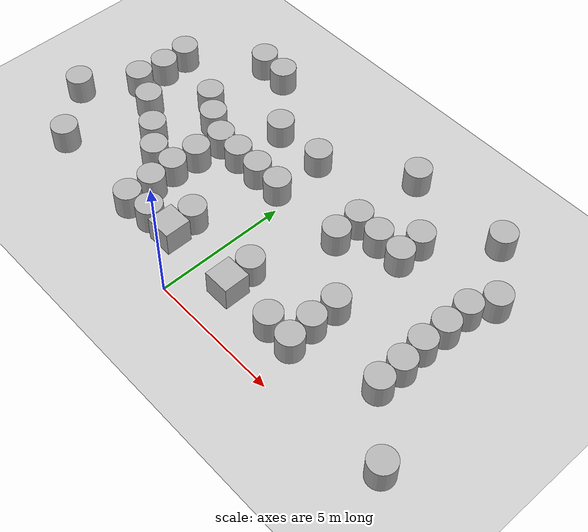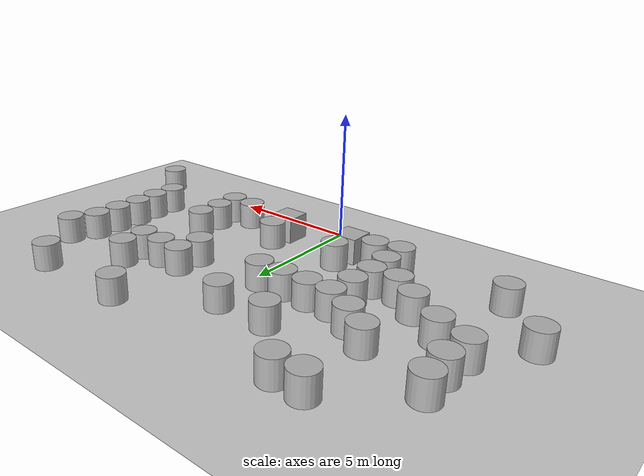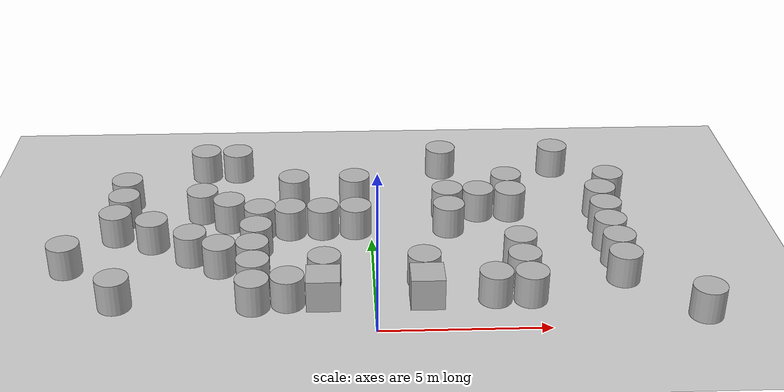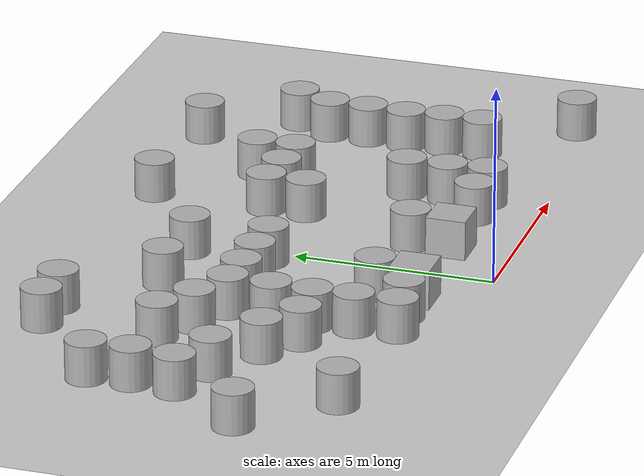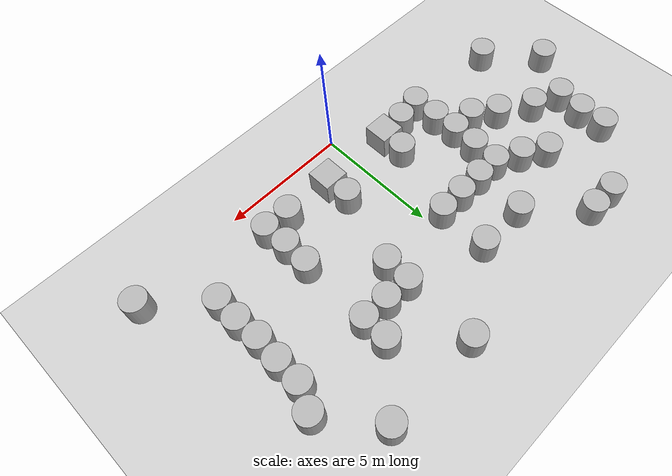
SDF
<sdf version="1.10">
 <world name="empty">
  <model name="ground_plane">
   <static>true</static>
   <link name="link">
    <collision name="collision">
     <geometry><plane><normal>0 0 1</normal><size>100 100</size></plane></geometry>
    </collision>
    <visual name="visual">
     <geometry><plane><normal>0 0 1</normal><size>100 100</size></plane></geometry>
     <material>
      <ambient>0.800000012 0.800000012 0.800000012 1</ambient>
      <diffuse>0.800000012 0.800000012 0.800000012 1</diffuse>
      <specular>0.800000012 0.800000012 0.800000012 1</specular>
     </material>
    </visual>
    <inertial>
     <mass>1</mass>
     <inertia><ixx>1</ixx><ixy>0</ixy><ixz>0</ixz><iyy>1</iyy><iyz>0</iyz><izz>1</izz></inertia>
    </inertial>
   </link>
  </model>
  <model name="box">
   <pose>-1.5142732858657837 1.5099300146102905 0.49999999990199806 8.6640958360379174e-21 4.2103315724608965e-23 5.9901372046615035e-22</pose>
   <link name="box_link">
    <inertial>
     <inertia><ixx>0.16666</ixx><ixy>0</ixy><ixz>0</ixz><iyy>0.16666</iyy><iyz>0</iyz><izz>0.16666</izz></inertia>
     <mass>1</mass>
    </inertial>
    <collision name="box_collision"><geometry><box><size>1 1 1</size></box></geometry></collision>
    <visual name="box_visual">
     <geometry><box><size>1 1 1</size></box></geometry>
     <material>
      <ambient>0.300000012 0.300000012 0.300000012 1</ambient>
      <diffuse>0.699999988 0.699999988 0.699999988 1</diffuse>
      <specular>1 1 1 1</specular>
     </material>
    </visual>
   </link>
   <static>false</static>
  </model>
  <model name="box_0">
   <pose>1.5080900192260742 1.5054577589035034 0.49999999990199806 9.9286448546489566e-22 -3.5225209775240119e-21 -3.9402750076948344e-22</pose>
   <link name="box_link">
    <inertial>
     <inertia><ixx>0.16666</ixx><ixy>0</ixy><ixz>0</ixz><iyy>0.16666</iyy><iyz>0</iyz><izz>0.16666</izz></inertia>
     <mass>1</mass>
    </inertial>
    <collision name="box_collision"><geometry><box><size>1 1 1</size></box></geometry></collision>
    <visual name="box_visual">
     <geometry><box><size>1 1 1</size></box></geometry>
     <material>
      <ambient>0.300000012 0.300000012 0.300000012 1</ambient>
      <diffuse>0.699999988 0.699999988 0.699999988 1</diffuse>
      <specular>1 1 1 1</specular>
     </material>
    </visual>
   </link>
   <static>false</static>
  </model>
  <model name="cylinder">
   <pose>-1.4837546737511549 2.5115409236591981 0.49999942638036005 1.2900801804576693e-19 1.8421700609310675e-19 -1.4533065116624549e-20</pose>
   <link name="cylinder_link">
    <inertial>
     <inertia>
      <ixx>0.14580000000000001</ixx>
      <ixy>0</ixy>
      <ixz>0</ixz>
      <iyy>0.14580000000000001</iyy>
      <iyz>0</iyz>
      <izz>0.125</izz>
     </inertia>
     <mass>1</mass>
    </inertial>
    <collision name="cylinder_collision">
     <geometry><cylinder><radius>0.5</radius><length>1</length></cylinder></geometry>
    </collision>
    <visual name="cylinder_visual">
     <geometry><cylinder><radius>0.5</radius><length>1</length></cylinder></geometry>
     <material>
      <ambient>0.300000012 0.300000012 0.300000012 1</ambient>
      <diffuse>0.699999988 0.699999988 0.699999988 1</diffuse>
      <specular>1 1 1 1</specular>
     </material>
    </visual>
   </link>
   <static>false</static>
  </model>
  <model name="cylinder_0">
   <pose>-1.5368457435468508 5.5079104028776644 0.49999942638036005 -9.4769493904214775e-20 4.7750270177761677e-20 9.4196160317118267e-21</pose>
   <link name="cylinder_link">
    <inertial>
     <inertia>
      <ixx>0.14580000000000001</ixx>
      <ixy>0</ixy>
      <ixz>0</ixz>
      <iyy>0.14580000000000001</iyy>
      <iyz>0</iyz>
      <izz>0.125</izz>
     </inertia>
     <mass>1</mass>
    </inertial>
    <collision name="cylinder_collision">
     <geometry><cylinder><radius>0.5</radius><length>1</length></cylinder></geometry>
    </collision>
    <visual name="cylinder_visual">
     <geometry><cylinder><radius>0.5</radius><length>1</length></cylinder></geometry>
     <material>
      <ambient>0.300000012 0.300000012 0.300000012 1</ambient>
      <diffuse>0.699999988 0.699999988 0.699999988 1</diffuse>
      <specular>1 1 1 1</specular>
     </material>
    </visual>
   </link>
   <static>false</static>
  </model>
  <model name="cylinder_1">
   <pose>-0.50015280302760123 5.5109114429446704 0.49999942638036005 -1.8290064490072975e-19 -1.6022983802186347e-19 2.1797375953600389e-20</pose>
   <link name="cylinder_link">
    <inertial>
     <inertia>
      <ixx>0.14580000000000001</ixx>
      <ixy>0</ixy>
      <ixz>0</ixz>
      <iyy>0.14580000000000001</iyy>
      <iyz>0</iyz>
      <izz>0.125</izz>
     </inertia>
     <mass>1</mass>
    </inertial>
    <collision name="cylinder_collision">
     <geometry><cylinder><radius>0.5</radius><length>1</length></cylinder></geometry>
    </collision>
    <visual name="cylinder_visual">
     <geometry><cylinder><radius>0.5</radius><length>1</length></cylinder></geometry>
     <material>
      <ambient>0.300000012 0.300000012 0.300000012 1</ambient>
      <diffuse>0.699999988 0.699999988 0.699999988 1</diffuse>
      <specular>1 1 1 1</specular>
     </material>
    </visual>
   </link>
   <static>false</static>
  </model>
  <model name="cylinder_2">
   <pose>2.4653722738842641 5.5155461895708893 0.49999942638036005 -1.2159427297744482e-19 3.5312910165291729e-19 9.3546767268988265e-21</pose>
   <link name="cylinder_link">
    <inertial>
     <inertia>
      <ixx>0.14580000000000001</ixx>
      <ixy>0</ixy>
      <ixz>0</ixz>
      <iyy>0.14580000000000001</iyy>
      <iyz>0</iyz>
      <izz>0.125</izz>
     </inertia>
     <mass>1</mass>
    </inertial>
    <collision name="cylinder_collision">
     <geometry><cylinder><radius>0.5</radius><length>1</length></cylinder></geometry>
    </collision>
    <visual name="cylinder_visual">
     <geometry><cylinder><radius>0.5</radius><length>1</length></cylinder></geometry>
     <material>
      <ambient>0.300000012 0.300000012 0.300000012 1</ambient>
      <diffuse>0.699999988 0.699999988 0.699999988 1</diffuse>
      <specular>1 1 1 1</specular>
     </material>
    </visual>
   </link>
   <static>false</static>
  </model>
  <model name="cylinder_3">
   <pose>1.487433394811243 2.5255222043697376 0.49999942638036005 1.8706433839552678e-19 5.2283511329588628e-19 -1.3109912346937293e-21</pose>
   <link name="cylinder_link">
    <inertial>
     <inertia>
      <ixx>0.14580000000000001</ixx>
      <ixy>0</ixy>
      <ixz>0</ixz>
      <iyy>0.14580000000000001</iyy>
      <iyz>0</iyz>
      <izz>0.125</izz>
     </inertia>
     <mass>1</mass>
    </inertial>
    <collision name="cylinder_collision">
     <geometry><cylinder><radius>0.5</radius><length>1</length></cylinder></geometry>
    </collision>
    <visual name="cylinder_visual">
     <geometry><cylinder><radius>0.5</radius><length>1</length></cylinder></geometry>
     <material>
      <ambient>0.300000012 0.300000012 0.300000012 1</ambient>
      <diffuse>0.699999988 0.699999988 0.699999988 1</diffuse>
      <specular>1 1 1 1</specular>
     </material>
    </visual>
   </link>
   <static>false</static>
  </model>
  <model name="cylinder_4">
   <pose>2.4957145365909326 6.5562213824833719 0.49999942638036005 2.9988847440565745e-19 9.5693645168915657e-20 -8.4291119693885359e-22</pose>
   <link name="cylinder_link">
    <inertial>
     <inertia>
      <ixx>0.14580000000000001</ixx>
      <ixy>0</ixy>
      <ixz>0</ixz>
      <iyy>0.14580000000000001</iyy>
      <iyz>0</iyz>
      <izz>0.125</izz>
     </inertia>
     <mass>1</mass>
    </inertial>
    <collision name="cylinder_collision">
     <geometry><cylinder><radius>0.5</radius><length>1</length></cylinder></geometry>
    </collision>
    <visual name="cylinder_visual">
     <geometry><cylinder><radius>0.5</radius><length>1</length></cylinder></geometry>
     <material>
      <ambient>0.300000012 0.300000012 0.300000012 1</ambient>
      <diffuse>0.699999988 0.699999988 0.699999988 1</diffuse>
      <specular>1 1 1 1</specular>
     </material>
    </visual>
   </link>
   <static>false</static>
  </model>
  <model name="cylinder_5">
   <pose>2.5002937360492954 9.4833928405990733 0.49999942638036005 4.952361160460668e-19 4.8781056156440803e-20 -2.1634174162290521e-21</pose>
   <link name="cylinder_link">
    <inertial>
     <inertia>
      <ixx>0.14580000000000001</ixx>
      <ixy>0</ixy>
      <ixz>0</ixz>
      <iyy>0.14580000000000001</iyy>
      <iyz>0</iyz>
      <izz>0.125</izz>
     </inertia>
     <mass>1</mass>
    </inertial>
    <collision name="cylinder_collision">
     <geometry><cylinder><radius>0.5</radius><length>1</length></cylinder></geometry>
    </collision>
    <visual name="cylinder_visual">
     <geometry><cylinder><radius>0.5</radius><length>1</length></cylinder></geometry>
     <material>
      <ambient>0.300000012 0.300000012 0.300000012 1</ambient>
      <diffuse>0.699999988 0.699999988 0.699999988 1</diffuse>
      <specular>1 1 1 1</specular>
     </material>
    </visual>
   </link>
   <static>false</static>
  </model>
  <model name="cylinder_6">
   <pose>3.4993580008778014 6.4957876762254445 0.49999942638036005 -5.4248370582058287e-19 -1.5181386705707368e-19 2.4105179257938827e-20</pose>
   <link name="cylinder_link">
    <inertial>
     <inertia>
      <ixx>0.14580000000000001</ixx>
      <ixy>0</ixy>
      <ixz>0</ixz>
      <iyy>0.14580000000000001</iyy>
      <iyz>0</iyz>
      <izz>0.125</izz>
     </inertia>
     <mass>1</mass>
    </inertial>
    <collision name="cylinder_collision">
     <geometry><cylinder><radius>0.5</radius><length>1</length></cylinder></geometry>
    </collision>
    <visual name="cylinder_visual">
     <geometry><cylinder><radius>0.5</radius><length>1</length></cylinder></geometry>
     <material>
      <ambient>0.300000012 0.300000012 0.300000012 1</ambient>
      <diffuse>0.699999988 0.699999988 0.699999988 1</diffuse>
      <specular>1 1 1 1</specular>
     </material>
    </visual>
   </link>
   <static>false</static>
  </model>
  <model name="cylinder_7">
   <pose>-0.50707124966087003 7.5108884883755263 0.49999942638036005 -2.3858114257558744e-19 2.3553797688425662e-19 1.8040523486291411e-20</pose>
   <link name="cylinder_link">
    <inertial>
     <inertia>
      <ixx>0.14580000000000001</ixx>
      <ixy>0</ixy>
      <ixz>0</ixz>
      <iyy>0.14580000000000001</iyy>
      <iyz>0</iyz>
      <izz>0.125</izz>
     </inertia>
     <mass>1</mass>
    </inertial>
    <collision name="cylinder_collision">
     <geometry><cylinder><radius>0.5</radius><length>1</length></cylinder></geometry>
    </collision>
    <visual name="cylinder_visual">
     <geometry><cylinder><radius>0.5</radius><length>1</length></cylinder></geometry>
     <material>
      <ambient>0.300000012 0.300000012 0.300000012 1</ambient>
      <diffuse>0.699999988 0.699999988 0.699999988 1</diffuse>
      <specular>1 1 1 1</specular>
     </material>
    </visual>
   </link>
   <static>false</static>
  </model>
  <model name="cylinder_8">
   <pose>-2.4996507741781819 7.5008443332345465 0.49999942638036005 -1.6489635791491826e-19 9.8879298002299211e-20 4.3068522468604751e-21</pose>
   <link name="cylinder_link">
    <inertial>
     <inertia>
      <ixx>0.14580000000000001</ixx>
      <ixy>0</ixy>
      <ixz>0</ixz>
      <iyy>0.14580000000000001</iyy>
      <iyz>0</iyz>
      <izz>0.125</izz>
     </inertia>
     <mass>1</mass>
    </inertial>
    <collision name="cylinder_collision">
     <geometry><cylinder><radius>0.5</radius><length>1</length></cylinder></geometry>
    </collision>
    <visual name="cylinder_visual">
     <geometry><cylinder><radius>0.5</radius><length>1</length></cylinder></geometry>
     <material>
      <ambient>0.300000012 0.300000012 0.300000012 1</ambient>
      <diffuse>0.699999988 0.699999988 0.699999988 1</diffuse>
      <specular>1 1 1 1</specular>
     </material>
    </visual>
   </link>
   <static>false</static>
  </model>
  <model name="cylinder_9">
   <pose>-2.5696204517251955 5.5089517135262609 0.49999998400599954 -2.0713713632137981e-07 -4.9507126561741468e-07 3.8382690473443217e-06</pose>
   <link name="cylinder_link">
    <inertial>
     <inertia>
      <ixx>0.14580000000000001</ixx>
      <ixy>0</ixy>
      <ixz>0</ixz>
      <iyy>0.14580000000000001</iyy>
      <iyz>0</iyz>
      <izz>0.125</izz>
     </inertia>
     <mass>1</mass>
    </inertial>
    <collision name="cylinder_collision">
     <geometry><cylinder><radius>0.5</radius><length>1</length></cylinder></geometry>
    </collision>
    <visual name="cylinder_visual">
     <geometry><cylinder><radius>0.5</radius><length>1</length></cylinder></geometry>
     <material>
      <ambient>0.300000012 0.300000012 0.300000012 1</ambient>
      <diffuse>0.699999988 0.699999988 0.699999988 1</diffuse>
      <specular>1 1 1 1</specular>
     </material>
    </visual>
   </link>
   <static>false</static>
  </model>
  <model name="cylinder_10">
   <pose>4.4721789446645088 2.4781528318208035 0.49999942638036005 2.1119340590164374e-19 -1.2869265033623615e-19 2.1489386403418832e-20</pose>
   <link name="cylinder_link">
    <inertial>
     <inertia>
      <ixx>0.14580000000000001</ixx>
      <ixy>0</ixy>
      <ixz>0</ixz>
      <iyy>0.14580000000000001</iyy>
      <iyz>0</iyz>
      <izz>0.125</izz>
     </inertia>
     <mass>1</mass>
    </inertial>
    <collision name="cylinder_collision">
     <geometry><cylinder><radius>0.5</radius><length>1</length></cylinder></geometry>
    </collision>
    <visual name="cylinder_visual">
     <geometry><cylinder><radius>0.5</radius><length>1</length></cylinder></geometry>
     <material>
      <ambient>0.300000012 0.300000012 0.300000012 1</ambient>
      <diffuse>0.699999988 0.699999988 0.699999988 1</diffuse>
      <specular>1 1 1 1</specular>
     </material>
    </visual>
   </link>
   <static>false</static>
  </model>
  <model name="cylinder_11">
   <pose>3.5152813053362997 1.4995482606081814 0.49999943631074512 -1.8544028214068181e-10 -2.2052745795610097e-08 4.4973880338952816e-05</pose>
   <link name="cylinder_link">
    <inertial>
     <inertia>
      <ixx>0.14580000000000001</ixx>
      <ixy>0</ixy>
      <ixz>0</ixz>
      <iyy>0.14580000000000001</iyy>
      <iyz>0</iyz>
      <izz>0.125</izz>
     </inertia>
     <mass>1</mass>
    </inertial>
    <collision name="cylinder_collision">
     <geometry><cylinder><radius>0.5</radius><length>1</length></cylinder></geometry>
    </collision>
    <visual name="cylinder_visual">
     <geometry><cylinder><radius>0.5</radius><length>1</length></cylinder></geometry>
     <material>
      <ambient>0.300000012 0.300000012 0.300000012 1</ambient>
      <diffuse>0.699999988 0.699999988 0.699999988 1</diffuse>
      <specular>1 1 1 1</specular>
     </material>
    </visual>
   </link>
   <static>false</static>
  </model>
  <model name="cylinder_12">
   <pose>4.552820314980524 1.468549960563126 0.49999998219136932 -2.4499870759038959e-08 -7.8644388651687598e-07 3.3009431404225497e-07</pose>
   <link name="cylinder_link">
    <inertial>
     <inertia>
      <ixx>0.14580000000000001</ixx>
      <ixy>0</ixy>
      <ixz>0</ixz>
      <iyy>0.14580000000000001</iyy>
      <iyz>0</iyz>
      <izz>0.125</izz>
     </inertia>
     <mass>1</mass>
    </inertial>
    <collision name="cylinder_collision">
     <geometry><cylinder><radius>0.5</radius><length>1</length></cylinder></geometry>
    </collision>
    <visual name="cylinder_visual">
     <geometry><cylinder><radius>0.5</radius><length>1</length></cylinder></geometry>
     <material>
      <ambient>0.300000012 0.300000012 0.300000012 1</ambient>
      <diffuse>0.699999988 0.699999988 0.699999988 1</diffuse>
      <specular>1 1 1 1</specular>
     </material>
    </visual>
   </link>
   <static>false</static>
  </model>
  <model name="cylinder_13">
   <pose>4.489239547971648 3.5358175597300114 0.49999942638036005 2.8395949399691138e-20 1.5363331938510369e-19 1.5580847699489212e-21</pose>
   <link name="cylinder_link">
    <inertial>
     <inertia>
      <ixx>0.14580000000000001</ixx>
      <ixy>0</ixy>
      <ixz>0</ixz>
      <iyy>0.14580000000000001</iyy>
      <iyz>0</iyz>
      <izz>0.125</izz>
     </inertia>
     <mass>1</mass>
    </inertial>
    <collision name="cylinder_collision">
     <geometry><cylinder><radius>0.5</radius><length>1</length></cylinder></geometry>
    </collision>
    <visual name="cylinder_visual">
     <geometry><cylinder><radius>0.5</radius><length>1</length></cylinder></geometry>
     <material>
      <ambient>0.300000012 0.300000012 0.300000012 1</ambient>
      <diffuse>0.699999988 0.699999988 0.699999988 1</diffuse>
      <specular>1 1 1 1</specular>
     </material>
    </visual>
   </link>
   <static>false</static>
  </model>
  <model name="cylinder_14">
   <pose>4.5334383221910777 6.4630689108140515 0.49999935513131832 3.0144049288500607e-08 6.5836659992481903e-10 -1.4551269572321477e-06</pose>
   <link name="cylinder_link">
    <inertial>
     <inertia>
      <ixx>0.14580000000000001</ixx>
      <ixy>0</ixy>
      <ixz>0</ixz>
      <iyy>0.14580000000000001</iyy>
      <iyz>0</iyz>
      <izz>0.125</izz>
     </inertia>
     <mass>1</mass>
    </inertial>
    <collision name="cylinder_collision">
     <geometry><cylinder><radius>0.5</radius><length>1</length></cylinder></geometry>
    </collision>
    <visual name="cylinder_visual">
     <geometry><cylinder><radius>0.5</radius><length>1</length></cylinder></geometry>
     <material>
      <ambient>0.300000012 0.300000012 0.300000012 1</ambient>
      <diffuse>0.699999988 0.699999988 0.699999988 1</diffuse>
      <specular>1 1 1 1</specular>
     </material>
    </visual>
   </link>
   <static>false</static>
  </model>
  <model name="cylinder_15">
   <pose>7.4823215051992227 6.4945591897252086 0.49999942638036005 1.2455972657425889e-19 -1.3882705273865735e-19 -2.2267099675571353e-21</pose>
   <link name="cylinder_link">
    <inertial>
     <inertia>
      <ixx>0.14580000000000001</ixx>
      <ixy>0</ixy>
      <ixz>0</ixz>
      <iyy>0.14580000000000001</iyy>
      <iyz>0</iyz>
      <izz>0.125</izz>
     </inertia>
     <mass>1</mass>
    </inertial>
    <collision name="cylinder_collision">
     <geometry><cylinder><radius>0.5</radius><length>1</length></cylinder></geometry>
    </collision>
    <visual name="cylinder_visual">
     <geometry><cylinder><radius>0.5</radius><length>1</length></cylinder></geometry>
     <material>
      <ambient>0.300000012 0.300000012 0.300000012 1</ambient>
      <diffuse>0.699999988 0.699999988 0.699999988 1</diffuse>
      <specular>1 1 1 1</specular>
     </material>
    </visual>
   </link>
   <static>false</static>
  </model>
  <model name="cylinder_16">
   <pose>7.4717963036459176 5.4726410693874401 0.49999942638036005 -8.4782770555477578e-20 -2.2556734794786758e-19 -2.5207994231794371e-20</pose>
   <link name="cylinder_link">
    <inertial>
     <inertia>
      <ixx>0.14580000000000001</ixx>
      <ixy>0</ixy>
      <ixz>0</ixz>
      <iyy>0.14580000000000001</iyy>
      <iyz>0</iyz>
      <izz>0.125</izz>
     </inertia>
     <mass>1</mass>
    </inertial>
    <collision name="cylinder_collision">
     <geometry><cylinder><radius>0.5</radius><length>1</length></cylinder></geometry>
    </collision>
    <visual name="cylinder_visual">
     <geometry><cylinder><radius>0.5</radius><length>1</length></cylinder></geometry>
     <material>
      <ambient>0.300000012 0.300000012 0.300000012 1</ambient>
      <diffuse>0.699999988 0.699999988 0.699999988 1</diffuse>
      <specular>1 1 1 1</specular>
     </material>
    </visual>
   </link>
   <static>false</static>
  </model>
  <model name="cylinder_17">
   <pose>7.4234604183277808 4.4506516614444624 0.49999944074098934 -1.6028426987539136e-08 -2.4475236762986862e-08 -0.001658590448863326</pose>
   <link name="cylinder_link">
    <inertial>
     <inertia>
      <ixx>0.14580000000000001</ixx>
      <ixy>0</ixy>
      <ixz>0</ixz>
      <iyy>0.14580000000000001</iyy>
      <iyz>0</iyz>
      <izz>0.125</izz>
     </inertia>
     <mass>1</mass>
    </inertial>
    <collision name="cylinder_collision">
     <geometry><cylinder><radius>0.5</radius><length>1</length></cylinder></geometry>
    </collision>
    <visual name="cylinder_visual">
     <geometry><cylinder><radius>0.5</radius><length>1</length></cylinder></geometry>
     <material>
      <ambient>0.300000012 0.300000012 0.300000012 1</ambient>
      <diffuse>0.699999988 0.699999988 0.699999988 1</diffuse>
      <specular>1 1 1 1</specular>
     </material>
    </visual>
   </link>
   <static>false</static>
  </model>
  <model name="cylinder_18">
   <pose>4.5210768934154846 7.4629925688739567 0.49999944205754038 3.3042527129199502e-08 1.2918855681529939e-10 -1.7726808627645601e-07</pose>
   <link name="cylinder_link">
    <inertial>
     <inertia>
      <ixx>0.14580000000000001</ixx>
      <ixy>0</ixy>
      <ixz>0</ixz>
      <iyy>0.14580000000000001</iyy>
      <iyz>0</iyz>
      <izz>0.125</izz>
     </inertia>
     <mass>1</mass>
    </inertial>
    <collision name="cylinder_collision">
     <geometry><cylinder><radius>0.5</radius><length>1</length></cylinder></geometry>
    </collision>
    <visual name="cylinder_visual">
     <geometry><cylinder><radius>0.5</radius><length>1</length></cylinder></geometry>
     <material>
      <ambient>0.300000012 0.300000012 0.300000012 1</ambient>
      <diffuse>0.699999988 0.699999988 0.699999988 1</diffuse>
      <specular>1 1 1 1</specular>
     </material>
    </visual>
   </link>
   <static>false</static>
  </model>
  <model name="cylinder_19">
   <pose>6.3855396230830648 9.4949946010721771 0.49999943518614837 2.0141951548457427e-08 3.012327523038749e-19 2.3956164309829781e-17</pose>
   <link name="cylinder_link">
    <inertial>
     <inertia>
      <ixx>0.14580000000000001</ixx>
      <ixy>0</ixy>
      <ixz>0</ixz>
      <iyy>0.14580000000000001</iyy>
      <iyz>0</iyz>
      <izz>0.125</izz>
     </inertia>
     <mass>1</mass>
    </inertial>
    <collision name="cylinder_collision">
     <geometry><cylinder><radius>0.5</radius><length>1</length></cylinder></geometry>
    </collision>
    <visual name="cylinder_visual">
     <geometry><cylinder><radius>0.5</radius><length>1</length></cylinder></geometry>
     <material>
      <ambient>0.300000012 0.300000012 0.300000012 1</ambient>
      <diffuse>0.699999988 0.699999988 0.699999988 1</diffuse>
      <specular>1 1 1 1</specular>
     </material>
    </visual>
   </link>
   <static>false</static>
  </model>
  <model name="cylinder_20">
   <pose>7.9166001046539822 7.4447277907300071 0.49999942638036005 -6.0129972703811341e-20 -3.6477302982958059e-19 1.2185579178527888e-20</pose>
   <link name="cylinder_link">
    <inertial>
     <inertia>
      <ixx>0.14580000000000001</ixx>
      <ixy>0</ixy>
      <ixz>0</ixz>
      <iyy>0.14580000000000001</iyy>
      <iyz>0</iyz>
      <izz>0.125</izz>
     </inertia>
     <mass>1</mass>
    </inertial>
    <collision name="cylinder_collision">
     <geometry><cylinder><radius>0.5</radius><length>1</length></cylinder></geometry>
    </collision>
    <visual name="cylinder_visual">
     <geometry><cylinder><radius>0.5</radius><length>1</length></cylinder></geometry>
     <material>
      <ambient>0.300000012 0.300000012 0.300000012 1</ambient>
      <diffuse>0.699999988 0.699999988 0.699999988 1</diffuse>
      <specular>1 1 1 1</specular>
     </material>
    </visual>
   </link>
   <static>false</static>
  </model>
  <model name="cylinder_21">
   <pose>7.4979118562813794 3.4534278174375852 0.49999942639754313 7.3099042971253039e-11 2.3369477153850155e-09 -0.0028957251323138439</pose>
   <link name="cylinder_link">
    <inertial>
     <inertia>
      <ixx>0.14580000000000001</ixx>
      <ixy>0</ixy>
      <ixz>0</ixz>
      <iyy>0.14580000000000001</iyy>
      <iyz>0</iyz>
      <izz>0.125</izz>
     </inertia>
     <mass>1</mass>
    </inertial>
    <collision name="cylinder_collision">
     <geometry><cylinder><radius>0.5</radius><length>1</length></cylinder></geometry>
    </collision>
    <visual name="cylinder_visual">
     <geometry><cylinder><radius>0.5</radius><length>1</length></cylinder></geometry>
     <material>
      <ambient>0.300000012 0.300000012 0.300000012 1</ambient>
      <diffuse>0.699999988 0.699999988 0.699999988 1</diffuse>
      <specular>1 1 1 1</specular>
     </material>
    </visual>
   </link>
   <static>false</static>
  </model>
  <model name="cylinder_22">
   <pose>7.4863467383450555 2.453493927277647 0.49999943589273554 2.3672179419543697e-08 -2.0984223274804382e-09 1.9708317345152628e-06</pose>
   <link name="cylinder_link">
    <inertial>
     <inertia>
      <ixx>0.14580000000000001</ixx>
      <ixy>0</ixy>
      <ixz>0</ixz>
      <iyy>0.14580000000000001</iyy>
      <iyz>0</iyz>
      <izz>0.125</izz>
     </inertia>
     <mass>1</mass>
    </inertial>
    <collision name="cylinder_collision">
     <geometry><cylinder><radius>0.5</radius><length>1</length></cylinder></geometry>
    </collision>
    <visual name="cylinder_visual">
     <geometry><cylinder><radius>0.5</radius><length>1</length></cylinder></geometry>
     <material>
      <ambient>0.300000012 0.300000012 0.300000012 1</ambient>
      <diffuse>0.699999988 0.699999988 0.699999988 1</diffuse>
      <specular>1 1 1 1</specular>
     </material>
    </visual>
   </link>
   <static>false</static>
  </model>
  <model name="cylinder_23">
   <pose>9.4865532197129454 0.51658195677780983 0.49999943519489742 -3.3591824192756615e-09 -2.0134794209095349e-08 3.0046556169471104e-05</pose>
   <link name="cylinder_link">
    <inertial>
     <inertia>
      <ixx>0.14580000000000001</ixx>
      <ixy>0</ixy>
      <ixz>0</ixz>
      <iyy>0.14580000000000001</iyy>
      <iyz>0</iyz>
      <izz>0.125</izz>
     </inertia>
     <mass>1</mass>
    </inertial>
    <collision name="cylinder_collision">
     <geometry><cylinder><radius>0.5</radius><length>1</length></cylinder></geometry>
    </collision>
    <visual name="cylinder_visual">
     <geometry><cylinder><radius>0.5</radius><length>1</length></cylinder></geometry>
     <material>
      <ambient>0.300000012 0.300000012 0.300000012 1</ambient>
      <diffuse>0.699999988 0.699999988 0.699999988 1</diffuse>
      <specular>1 1 1 1</specular>
     </material>
    </visual>
   </link>
   <static>false</static>
  </model>
  <model name="cylinder_54">
   <pose>-7.5812881768841933 1.4960166181144201 0.49999942638036005 5.0675803603108343e-19 -1.710798903596819e-20 1.4785043207583688e-21</pose>
   <link name="cylinder_link">
    <inertial>
     <inertia>
      <ixx>0.14580000000000001</ixx>
      <ixy>0</ixy>
      <ixz>0</ixz>
      <iyy>0.14580000000000001</iyy>
      <iyz>0</iyz>
      <izz>0.125</izz>
     </inertia>
     <mass>1</mass>
    </inertial>
    <collision name="cylinder_collision">
     <geometry><cylinder><radius>0.5</radius><length>1</length></cylinder></geometry>
    </collision>
    <visual name="cylinder_visual">
     <geometry><cylinder><radius>0.5</radius><length>1</length></cylinder></geometry>
     <material>
      <ambient>0.300000012 0.300000012 0.300000012 1</ambient>
      <diffuse>0.699999988 0.699999988 0.699999988 1</diffuse>
      <specular>1 1 1 1</specular>
     </material>
    </visual>
   </link>
   <static>false</static>
  </model>
  <model name="cylinder_61">
   <pose>-3.5273185892445995 5.5190572704736027 0.49999995850360901 1.6518770328712817e-06 -4.0008705975766965e-06 1.7238393935206023e-07</pose>
   <link name="cylinder_link">
    <inertial>
     <inertia>
      <ixx>0.14580000000000001</ixx>
      <ixy>0</ixy>
      <ixz>0</ixz>
      <iyy>0.14580000000000001</iyy>
      <iyz>0</iyz>
      <izz>0.125</izz>
     </inertia>
     <mass>1</mass>
    </inertial>
    <collision name="cylinder_collision">
     <geometry><cylinder><radius>0.5</radius><length>1</length></cylinder></geometry>
    </collision>
    <visual name="cylinder_visual">
     <geometry><cylinder><radius>0.5</radius><length>1</length></cylinder></geometry>
     <material>
      <ambient>0.300000012 0.300000012 0.300000012 1</ambient>
      <diffuse>0.699999988 0.699999988 0.699999988 1</diffuse>
      <specular>1 1 1 1</specular>
     </material>
    </visual>
   </link>
   <static>false</static>
  </model>
  <model name="cylinder_62">
   <pose>-3.5941152309905959 4.4187321053466704 0.49999942638036005 4.0438084763265643e-19 -2.299683283158626e-19 -1.5641957897864884e-20</pose>
   <link name="cylinder_link">
    <inertial>
     <inertia>
      <ixx>0.14580000000000001</ixx>
      <ixy>0</ixy>
      <ixz>0</ixz>
      <iyy>0.14580000000000001</iyy>
      <iyz>0</iyz>
      <izz>0.125</izz>
     </inertia>
     <mass>1</mass>
    </inertial>
    <collision name="cylinder_collision">
     <geometry><cylinder><radius>0.5</radius><length>1</length></cylinder></geometry>
    </collision>
    <visual name="cylinder_visual">
     <geometry><cylinder><radius>0.5</radius><length>1</length></cylinder></geometry>
     <material>
      <ambient>0.300000012 0.300000012 0.300000012 1</ambient>
      <diffuse>0.699999988 0.699999988 0.699999988 1</diffuse>
      <specular>1 1 1 1</specular>
     </material>
    </visual>
   </link>
   <static>false</static>
  </model>
  <model name="cylinder_63">
   <pose>-3.6536442565977669 3.3775332431334544 0.49999931564251193 -9.6339835377521537e-08 -3.6732331813005936e-11 -1.0715537661147963e-06</pose>
   <link name="cylinder_link">
    <inertial>
     <inertia>
      <ixx>0.14580000000000001</ixx>
      <ixy>0</ixy>
      <ixz>0</ixz>
      <iyy>0.14580000000000001</iyy>
      <iyz>0</iyz>
      <izz>0.125</izz>
     </inertia>
     <mass>1</mass>
    </inertial>
    <collision name="cylinder_collision">
     <geometry><cylinder><radius>0.5</radius><length>1</length></cylinder></geometry>
    </collision>
    <visual name="cylinder_visual">
     <geometry><cylinder><radius>0.5</radius><length>1</length></cylinder></geometry>
     <material>
      <ambient>0.300000012 0.300000012 0.300000012 1</ambient>
      <diffuse>0.699999988 0.699999988 0.699999988 1</diffuse>
      <specular>1 1 1 1</specular>
     </material>
    </visual>
   </link>
   <static>false</static>
  </model>
  <model name="cylinder_64">
   <pose>-2.5505166755440674 1.4645800466321515 0.49999936326911204 5.0819021490038064e-09 -2.4787134100172631e-07 7.3526211710795312e-08</pose>
   <link name="cylinder_link">
    <inertial>
     <inertia>
      <ixx>0.14580000000000001</ixx>
      <ixy>0</ixy>
      <ixz>0</ixz>
      <iyy>0.14580000000000001</iyy>
      <iyz>0</iyz>
      <izz>0.125</izz>
     </inertia>
     <mass>1</mass>
    </inertial>
    <collision name="cylinder_collision">
     <geometry><cylinder><radius>0.5</radius><length>1</length></cylinder></geometry>
    </collision>
    <visual name="cylinder_visual">
     <geometry><cylinder><radius>0.5</radius><length>1</length></cylinder></geometry>
     <material>
      <ambient>0.300000012 0.300000012 0.300000012 1</ambient>
      <diffuse>0.699999988 0.699999988 0.699999988 1</diffuse>
      <specular>1 1 1 1</specular>
     </material>
    </visual>
   </link>
   <static>false</static>
  </model>
  <model name="cylinder_65">
   <pose>-3.5588403227909464 1.3081922622029127 0.49999996573877176 -1.1666589290098764e-06 -1.3576058187864791e-07 4.5070815733230064e-07</pose>
   <link name="cylinder_link">
    <inertial>
     <inertia>
      <ixx>0.14580000000000001</ixx>
      <ixy>0</ixy>
      <ixz>0</ixz>
      <iyy>0.14580000000000001</iyy>
      <iyz>0</iyz>
      <izz>0.125</izz>
     </inertia>
     <mass>1</mass>
    </inertial>
    <collision name="cylinder_collision">
     <geometry><cylinder><radius>0.5</radius><length>1</length></cylinder></geometry>
    </collision>
    <visual name="cylinder_visual">
     <geometry><cylinder><radius>0.5</radius><length>1</length></cylinder></geometry>
     <material>
      <ambient>0.300000012 0.300000012 0.300000012 1</ambient>
      <diffuse>0.699999988 0.699999988 0.699999988 1</diffuse>
      <specular>1 1 1 1</specular>
     </material>
    </visual>
   </link>
   <static>false</static>
  </model>
  <model name="cylinder_66">
   <pose>-3.5916700764308418 2.3777194124666177 0.49999943629943366 2.0670140400542724e-08 -9.5602745370246546e-10 -2.8414295418328175e-07</pose>
   <link name="cylinder_link">
    <inertial>
     <inertia>
      <ixx>0.14580000000000001</ixx>
      <ixy>0</ixy>
      <ixz>0</ixz>
      <iyy>0.14580000000000001</iyy>
      <iyz>0</iyz>
      <izz>0.125</izz>
     </inertia>
     <mass>1</mass>
    </inertial>
    <collision name="cylinder_collision">
     <geometry><cylinder><radius>0.5</radius><length>1</length></cylinder></geometry>
    </collision>
    <visual name="cylinder_visual">
     <geometry><cylinder><radius>0.5</radius><length>1</length></cylinder></geometry>
     <material>
      <ambient>0.300000012 0.300000012 0.300000012 1</ambient>
      <diffuse>0.699999988 0.699999988 0.699999988 1</diffuse>
      <specular>1 1 1 1</specular>
     </material>
    </visual>
   </link>
   <static>false</static>
  </model>
  <model name="cylinder_71">
   <pose>-4.6634331273785214 3.3431157656573927 0.49999942638036005 6.1821569859638651e-19 8.3509069501191315e-20 -1.7277053511537508e-20</pose>
   <link name="cylinder_link">
    <inertial>
     <inertia>
      <ixx>0.14580000000000001</ixx>
      <ixy>0</ixy>
      <ixz>0</ixz>
      <iyy>0.14580000000000001</iyy>
      <iyz>0</iyz>
      <izz>0.125</izz>
     </inertia>
     <mass>1</mass>
    </inertial>
    <collision name="cylinder_collision">
     <geometry><cylinder><radius>0.5</radius><length>1</length></cylinder></geometry>
    </collision>
    <visual name="cylinder_visual">
     <geometry><cylinder><radius>0.5</radius><length>1</length></cylinder></geometry>
     <material>
      <ambient>0.300000012 0.300000012 0.300000012 1</ambient>
      <diffuse>0.699999988 0.699999988 0.699999988 1</diffuse>
      <specular>1 1 1 1</specular>
     </material>
    </visual>
   </link>
   <static>false</static>
  </model>
  <model name="cylinder_72">
   <pose>-9.331594714735127 3.4256124704847286 0.49999930609860455 -5.4523282266958731e-09 -7.5373774206026416e-08 1.4203880834969399e-05</pose>
   <link name="cylinder_link">
    <inertial>
     <inertia>
      <ixx>0.14580000000000001</ixx>
      <ixy>0</ixy>
      <ixz>0</ixz>
      <iyy>0.14580000000000001</iyy>
      <iyz>0</iyz>
      <izz>0.125</izz>
     </inertia>
     <mass>1</mass>
    </inertial>
    <collision name="cylinder_collision">
     <geometry><cylinder><radius>0.5</radius><length>1</length></cylinder></geometry>
    </collision>
    <visual name="cylinder_visual">
     <geometry><cylinder><radius>0.5</radius><length>1</length></cylinder></geometry>
     <material>
      <ambient>0.300000012 0.300000012 0.300000012 1</ambient>
      <diffuse>0.699999988 0.699999988 0.699999988 1</diffuse>
      <specular>1 1 1 1</specular>
     </material>
    </visual>
   </link>
   <static>false</static>
  </model>
  <model name="cylinder_73">
   <pose>-6.8526062965393066 4.8102498054504395 0.49999899681693505 6.2300990189113942e-20 1.5532601609374657e-19 1.807036815813847e-20</pose>
   <link name="cylinder_link">
    <inertial>
     <inertia>
      <ixx>0.14580000000000001</ixx>
      <ixy>0</ixy>
      <ixz>0</ixz>
      <iyy>0.14580000000000001</iyy>
      <iyz>0</iyz>
      <izz>0.125</izz>
     </inertia>
     <mass>1</mass>
    </inertial>
    <collision name="cylinder_collision">
     <geometry><cylinder><radius>0.5</radius><length>1</length></cylinder></geometry>
    </collision>
    <visual name="cylinder_visual">
     <geometry><cylinder><radius>0.5</radius><length>1</length></cylinder></geometry>
     <material>
      <ambient>0.300000012 0.300000012 0.300000012 1</ambient>
      <diffuse>0.699999988 0.699999988 0.699999988 1</diffuse>
      <specular>1 1 1 1</specular>
     </material>
    </visual>
   </link>
   <static>false</static>
  </model>
  <model name="cylinder_74">
   <pose>-8.0397729102256861 5.2728139876843851 0.49999942638036005 1.7347148555167489e-19 1.2056753103324183e-19 -8.8953125674626707e-21</pose>
   <link name="cylinder_link">
    <inertial>
     <inertia>
      <ixx>0.14580000000000001</ixx>
      <ixy>0</ixy>
      <ixz>0</ixz>
      <iyy>0.14580000000000001</iyy>
      <iyz>0</iyz>
      <izz>0.125</izz>
     </inertia>
     <mass>1</mass>
    </inertial>
    <collision name="cylinder_collision">
     <geometry><cylinder><radius>0.5</radius><length>1</length></cylinder></geometry>
    </collision>
    <visual name="cylinder_visual">
     <geometry><cylinder><radius>0.5</radius><length>1</length></cylinder></geometry>
     <material>
      <ambient>0.300000012 0.300000012 0.300000012 1</ambient>
      <diffuse>0.699999988 0.699999988 0.699999988 1</diffuse>
      <specular>1 1 1 1</specular>
     </material>
    </visual>
   </link>
   <static>false</static>
  </model>
  <model name="cylinder_75">
   <pose>-5.5849564710360813 3.9958636392826357 0.49999942638036005 -5.8978413531035379e-21 -2.2336402338083907e-19 -1.2660040109688045e-20</pose>
   <link name="cylinder_link">
    <inertial>
     <inertia>
      <ixx>0.14580000000000001</ixx>
      <ixy>0</ixy>
      <ixz>0</ixz>
      <iyy>0.14580000000000001</iyy>
      <iyz>0</iyz>
      <izz>0.125</izz>
     </inertia>
     <mass>1</mass>
    </inertial>
    <collision name="cylinder_collision">
     <geometry><cylinder><radius>0.5</radius><length>1</length></cylinder></geometry>
    </collision>
    <visual name="cylinder_visual">
     <geometry><cylinder><radius>0.5</radius><length>1</length></cylinder></geometry>
     <material>
      <ambient>0.300000012 0.300000012 0.300000012 1</ambient>
      <diffuse>0.699999988 0.699999988 0.699999988 1</diffuse>
      <specular>1 1 1 1</specular>
     </material>
    </visual>
   </link>
   <static>false</static>
  </model>
  <model name="cylinder_76">
   <pose>-4.5296335715520657 6.0023388640099293 0.49999942638036005 3.7244509565730687e-20 -5.0381546240189295e-20 1.1302559104087798e-20</pose>
   <link name="cylinder_link">
    <inertial>
     <inertia>
      <ixx>0.14580000000000001</ixx>
      <ixy>0</ixy>
      <ixz>0</ixz>
      <iyy>0.14580000000000001</iyy>
      <iyz>0</iyz>
      <izz>0.125</izz>
     </inertia>
     <mass>1</mass>
    </inertial>
    <collision name="cylinder_collision">
     <geometry><cylinder><radius>0.5</radius><length>1</length></cylinder></geometry>
    </collision>
    <visual name="cylinder_visual">
     <geometry><cylinder><radius>0.5</radius><length>1</length></cylinder></geometry>
     <material>
      <ambient>0.300000012 0.300000012 0.300000012 1</ambient>
      <diffuse>0.699999988 0.699999988 0.699999988 1</diffuse>
      <specular>1 1 1 1</specular>
     </material>
    </visual>
   </link>
   <static>false</static>
  </model>
  <model name="cylinder_77">
   <pose>-5.4334310471327871 6.6184637987136163 0.49999942638036005 5.3541180826890945e-19 -1.099022307838697e-19 -1.8777621846021901e-20</pose>
   <link name="cylinder_link">
    <inertial>
     <inertia>
      <ixx>0.14580000000000001</ixx>
      <ixy>0</ixy>
      <ixz>0</ixz>
      <iyy>0.14580000000000001</iyy>
      <iyz>0</iyz>
      <izz>0.125</izz>
     </inertia>
     <mass>1</mass>
    </inertial>
    <collision name="cylinder_collision">
     <geometry><cylinder><radius>0.5</radius><length>1</length></cylinder></geometry>
    </collision>
    <visual name="cylinder_visual">
     <geometry><cylinder><radius>0.5</radius><length>1</length></cylinder></geometry>
     <material>
      <ambient>0.300000012 0.300000012 0.300000012 1</ambient>
      <diffuse>0.699999988 0.699999988 0.699999988 1</diffuse>
      <specular>1 1 1 1</specular>
     </material>
    </visual>
   </link>
   <static>false</static>
  </model>
  <model name="cylinder_78">
   <pose>-7.9151711315401663 6.3822400055001722 0.49999942638036005 -2.8130465709834064e-19 -2.5457564973459062e-19 1.1676196442759563e-20</pose>
   <link name="cylinder_link">
    <inertial>
     <inertia>
      <ixx>0.14580000000000001</ixx>
      <ixy>0</ixy>
      <ixz>0</ixz>
      <iyy>0.14580000000000001</iyy>
      <iyz>0</iyz>
      <izz>0.125</izz>
     </inertia>
     <mass>1</mass>
    </inertial>
    <collision name="cylinder_collision">
     <geometry><cylinder><radius>0.5</radius><length>1</length></cylinder></geometry>
    </collision>
    <visual name="cylinder_visual">
     <geometry><cylinder><radius>0.5</radius><length>1</length></cylinder></geometry>
     <material>
      <ambient>0.300000012 0.300000012 0.300000012 1</ambient>
      <diffuse>0.699999988 0.699999988 0.699999988 1</diffuse>
      <specular>1 1 1 1</specular>
     </material>
    </visual>
   </link>
   <static>false</static>
  </model>
  <model name="cylinder_79">
   <pose>-7.9678497041195362 7.4527911579898731 0.49999942638036005 -2.7492903487115564e-19 -5.178625361253864e-19 -7.3559921265452636e-21</pose>
   <link name="cylinder_link">
    <inertial>
     <inertia>
      <ixx>0.14580000000000001</ixx>
      <ixy>0</ixy>
      <ixz>0</ixz>
      <iyy>0.14580000000000001</iyy>
      <iyz>0</iyz>
      <izz>0.125</izz>
     </inertia>
     <mass>1</mass>
    </inertial>
    <collision name="cylinder_collision">
     <geometry><cylinder><radius>0.5</radius><length>1</length></cylinder></geometry>
    </collision>
    <visual name="cylinder_visual">
     <geometry><cylinder><radius>0.5</radius><length>1</length></cylinder></geometry>
     <material>
      <ambient>0.300000012 0.300000012 0.300000012 1</ambient>
      <diffuse>0.699999988 0.699999988 0.699999988 1</diffuse>
      <specular>1 1 1 1</specular>
     </material>
    </visual>
   </link>
   <static>false</static>
  </model>
  <model name="cylinder_80">
   <pose>-5.5522799491882324 9.453242854586648 0.49999942638036005 3.7727335449914597e-19 2.2937409851748992e-19 5.4586595371271145e-21</pose>
   <link name="cylinder_link">
    <inertial>
     <inertia>
      <ixx>0.14580000000000001</ixx>
      <ixy>0</ixy>
      <ixz>0</ixz>
      <iyy>0.14580000000000001</iyy>
      <iyz>0</iyz>
      <izz>0.125</izz>
     </inertia>
     <mass>1</mass>
    </inertial>
    <collision name="cylinder_collision">
     <geometry><cylinder><radius>0.5</radius><length>1</length></cylinder></geometry>
    </collision>
    <visual name="cylinder_visual">
     <geometry><cylinder><radius>0.5</radius><length>1</length></cylinder></geometry>
     <material>
      <ambient>0.300000012 0.300000012 0.300000012 1</ambient>
      <diffuse>0.699999988 0.699999988 0.699999988 1</diffuse>
      <specular>1 1 1 1</specular>
     </material>
    </visual>
   </link>
   <static>false</static>
  </model>
  <model name="cylinder_81">
   <pose>-4.4735783148448913 9.4287790644721028 0.49999942638036005 3.6210121024863786e-19 -5.7232905226702383e-19 -9.2279213111066112e-21</pose>
   <link name="cylinder_link">
    <inertial>
     <inertia>
      <ixx>0.14580000000000001</ixx>
      <ixy>0</ixy>
      <ixz>0</ixz>
      <iyy>0.14580000000000001</iyy>
      <iyz>0</iyz>
      <izz>0.125</izz>
     </inertia>
     <mass>1</mass>
    </inertial>
    <collision name="cylinder_collision">
     <geometry><cylinder><radius>0.5</radius><length>1</length></cylinder></geometry>
    </collision>
    <visual name="cylinder_visual">
     <geometry><cylinder><radius>0.5</radius><length>1</length></cylinder></geometry>
     <material>
      <ambient>0.300000012 0.300000012 0.300000012 1</ambient>
      <diffuse>0.699999988 0.699999988 0.699999988 1</diffuse>
      <specular>1 1 1 1</specular>
     </material>
    </visual>
   </link>
   <static>false</static>
  </model>
 </world>
</sdf>
